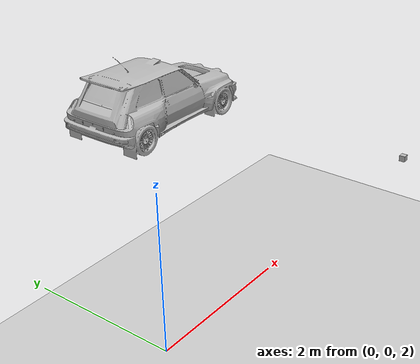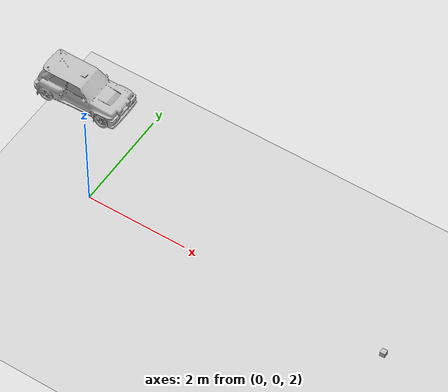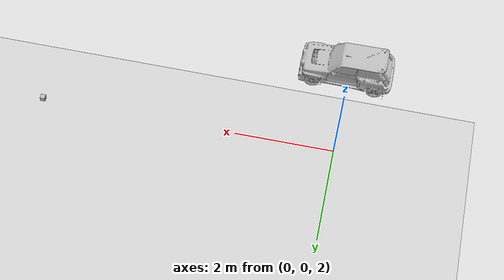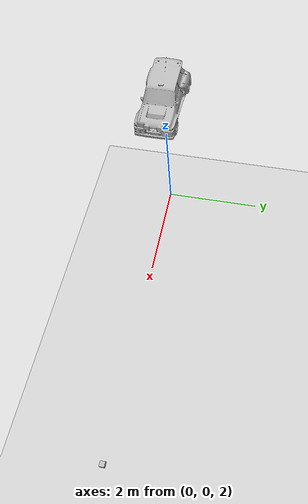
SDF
<?xml version="1.0" ?>
<sdf version="1.6">
  <world name="scene_base">
    <plugin
      filename="ignition-gazebo-physics-system"
      name="ignition::gazebo::systems::Physics">
    </plugin>
    <plugin
      filename="ignition-gazebo-user-commands-system"
      name="ignition::gazebo::systems::UserCommands">
    </plugin>
    <plugin
      filename="ignition-gazebo-scene-broadcaster-system"
      name="ignition::gazebo::systems::SceneBroadcaster">
    </plugin>
    <plugin
      filename="ignition-gazebo-sensors-system"
      name="ignition::gazebo::systems::Sensors">
      <render_engine>ogre2</render_engine>
    </plugin>

    <gui fullscreen="0">

      <!-- 3D scene -->
      <plugin filename="MinimalScene" name="3D View">
        <ignition-gui>
          <title>3D View</title>
          <property type="bool" key="showTitleBar">false</property>
          <property type="string" key="state">docked</property>
        </ignition-gui>

        <engine>ogre2</engine>
        <scene>scene</scene>
        <ambient_light>0.4 0.4 0.4</ambient_light>
        <background_color>0.8 0.8 0.8</background_color>
        <camera_pose>-6 0 6 0 0.5 0</camera_pose>
      </plugin>

      <!-- Plugins that add functionality to the scene -->
      <plugin filename="EntityContextMenuPlugin" name="Entity context menu">
        <ignition-gui>
          <property key="state" type="string">floating</property>
          <property key="width" type="double">5</property>
          <property key="height" type="double">5</property>
          <property key="showTitleBar" type="bool">false</property>
        </ignition-gui>
      </plugin>
      <plugin filename="GzSceneManager" name="Scene Manager">
        <ignition-gui>
          <property key="resizable" type="bool">false</property>
          <property key="width" type="double">5</property>
          <property key="height" type="double">5</property>
          <property key="state" type="string">floating</property>
          <property key="showTitleBar" type="bool">false</property>
        </ignition-gui>
      </plugin>
      <plugin filename="InteractiveViewControl" name="Interactive view control">
        <ignition-gui>
          <property key="resizable" type="bool">false</property>
          <property key="width" type="double">5</property>
          <property key="height" type="double">5</property>
          <property key="state" type="string">floating</property>
          <property key="showTitleBar" type="bool">false</property>
        </ignition-gui>
      </plugin>
      <plugin filename="CameraTracking" name="Camera Tracking">
        <ignition-gui>
          <property key="resizable" type="bool">false</property>
          <property key="width" type="double">5</property>
          <property key="height" type="double">5</property>
          <property key="state" type="string">floating</property>
          <property key="showTitleBar" type="bool">false</property>
        </ignition-gui>
      </plugin>

      <!-- World control -->
      <plugin filename="WorldControl" name="World control">
        <ignition-gui>
          <title>World control</title>
          <property type="bool" key="showTitleBar">false</property>
          <property type="bool" key="resizable">false</property>
          <property type="double" key="height">72</property>
          <property type="double" key="width">121</property>
          <property type="double" key="z">1</property>

          <property type="string" key="state">floating</property>
          <anchors target="3D View">
            <line own="left" target="left"/>
            <line own="bottom" target="bottom"/>
          </anchors>
        </ignition-gui>

        <play_pause>true</play_pause>
        <step>true</step>
        <start_paused>false</start_paused>
        <use_event>true</use_event>

      </plugin>

      <!-- World statistics -->
      <plugin filename="WorldStats" name="World stats">
        <ignition-gui>
          <title>World stats</title>
          <property type="bool" key="showTitleBar">false</property>
          <property type="bool" key="resizable">false</property>
          <property type="double" key="height">110</property>
          <property type="double" key="width">290</property>
          <property type="double" key="z">1</property>

          <property type="string" key="state">floating</property>
          <anchors target="3D View">
            <line own="right" target="right"/>
            <line own="bottom" target="bottom"/>
          </anchors>
        </ignition-gui>

        <sim_time>true</sim_time>
        <real_time>true</real_time>
        <real_time_factor>true</real_time_factor>
        <iterations>true</iterations>
      </plugin>

      <!-- Inspector -->
      <plugin filename="ComponentInspector" name="Component inspector">
        <ignition-gui>
          <property type="string" key="state">docked_collapsed</property>
        </ignition-gui>
      </plugin>

      <!-- Entity tree -->
      <plugin filename="EntityTree" name="Entity tree">
        <ignition-gui>
          <property type="string" key="state">docked_collapsed</property>
        </ignition-gui>
      </plugin>

      <!-- Image Display Plugins for visualization -->
      <plugin filename="ImageDisplay" name="Image Display">
        <ignition-gui>
        </ignition-gui>
        <topic>semantic/colored_map</topic>
      </plugin>
      <plugin filename="ImageDisplay" name="Image Display">
        <ignition-gui>
        </ignition-gui>
        <topic>semantic/labels_map</topic>
      </plugin>
      <plugin filename="ImageDisplay" name="Image Display">
        <ignition-gui>
        </ignition-gui>
        <topic>rgbd/image</topic>
      </plugin>
      <plugin filename="ImageDisplay" name="Image Display">
        <ignition-gui>
        </ignition-gui>
        <topic>rgbd/depth_image</topic>
      </plugin>
    </gui>

    <light type="directional" name="sun">
      <cast_shadows>false</cast_shadows>
      <pose>0 0 20 0 0 0</pose>
      <diffuse>0.8 0.8 0.8 1</diffuse>
      <specular>0.2 0.2 0.2 1</specular>
      <attenuation>
        <range>1000</range>
        <constant>0.9</constant>
        <linear>0.01</linear>
        <quadratic>0.001</quadratic>
      </attenuation>
      <direction>0 0 -1</direction>
    </light>

    <!-- Camera instance -->
    <model name="camera">
      <pose>6 0 2.0 0 0.0 3.14</pose>
      <link name="link">
        <pose>0 0 0 0 0 0</pose>
        <inertial>
          <mass>0.0</mass>
          <inertia>
            <ixx>0.000</ixx>
            <iyy>0.000</iyy>
            <izz>0.000</izz>
          </inertia>
        </inertial>
        <collision name="collision">
          <geometry>
            <box>
              <size>0.1 0.1 0.1</size>
            </box>
          </geometry>
        </collision>
        <visual name="visual">
          <geometry>
            <box>
              <size>0.1 0.1 0.1</size>
            </box>
          </geometry>
        </visual>

        <sensor name="rgbd_camera" type="rgbd_camera">
          <topic>rgbd</topic>
          <camera>
            <horizontal_fov>1.57</horizontal_fov>
            <image>
              <width>800</width>
              <height>600</height>
            </image>
            <clip>
              <near>0.1</near>
              <far>100</far>
            </clip>
          </camera>
          <always_on>1</always_on>
          <update_rate>30</update_rate>
          <visualize>true</visualize>
        </sensor>

        <sensor name="semantic_segmentation_camera" type="segmentation">
          <topic>semantic</topic>
          <camera>
            <segmentation_type>semantic</segmentation_type>
            <horizontal_fov>1.57</horizontal_fov>
            <image>
              <width>800</width>
              <height>600</height>
            </image>
            <clip>
              <near>0.1</near>
              <far>100</far>
            </clip>
            <!-- uncomment these lines to save segmentation data -->
          </camera>
          <always_on>1</always_on>
          <update_rate>30</update_rate>
          <visualize>true</visualize>
        </sensor>
      </link>
    </model>

    <!-- Basic models of the scene -->
    <model name="ground_plane">
      <static>true</static>
      <link name="link">
        <collision name="collision">
          <geometry>
            <plane>
              <normal>0 0 1</normal>
              <size>100 100</size>
            </plane>
          </geometry>
        </collision>
        <visual name="visual">
          <geometry>
            <plane>
              <normal>0 0 1</normal>
              <size>100 100</size>
            </plane>
          </geometry>
          <material>
            <ambient>0.8 0.8 0.8 1</ambient>
            <diffuse>0.8 0.8 0.8 1</diffuse>
            <specular>0.8 0.8 0.8 1</specular>
          </material>
        </visual>
      </link>
    </model>

    <!-- Add shapnet models below -->
    <!-- for example: -->
    <include>
        <uri>model://car/car0</uri>
        <pose>0 0 5 1.570796 0 -1.570796</pose>
    </include>

  </world>
</sdf>

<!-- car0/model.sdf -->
<sdf version="1.6">
  <model name="car0">
    <static>false</static>
    <link name="link">
      <visual name="visual">
        <geometry>
          <mesh>
            <scale>2 2 2</scale>
            <uri>model://car/car0/models/model_normalized.obj</uri>
          </mesh>
        </geometry>
      </visual>
      <collision name="collision">
        <geometry>
          <mesh>
            <scale>2 2 2</scale>
            <uri>model://car/car0/models/model_normalized.obj</uri>
          </mesh>
        </geometry>
      </collision>
    </link>
    <plugin filename="ignition-gazebo-label-system" name="ignition::gazebo::systems::Label">
        <label>30</label>
    </plugin>
  </model>
</sdf>
